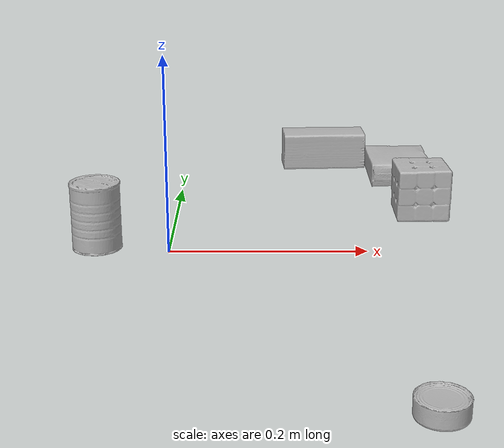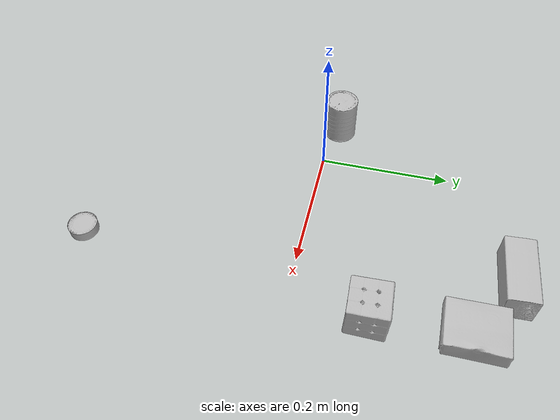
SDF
<sdf version="1.4">
  <world name="default">
    <light name="light1" type="point">
      <pose>0 0 1 0 0 0</pose>
      <diffuse>3 3 3 1</diffuse>
      <specular>3 3 3 1</specular>
    </light>
    <light name="light2" type="point">
      <pose>0 0.5 2 0 0 0</pose>
      <diffuse>1 1 1 1</diffuse>
      <specular>1 1 1 1</specular>
    </light>
    <light name="light3" type="point">
      <pose>0 0.5 2 0 0 0</pose>
      <diffuse>3 3 3 1</diffuse>
      <specular>3 3 3 1</specular>
    </light>
    <scene>
      <ambient>0.7 0.7 0.7</ambient>
    </scene>
    <model name="box1">
      <link name="link_box1">
        <collision name="default">
          <geometry>
            <mesh>
              <uri>model://rubiks_cube/collision_meshes/collision.obj</uri>
              <scale>1.0 1.0 1.0</scale>
            </mesh>
          </geometry>
          <surface>
            <friction>
              <ode>
                <mu>0.5</mu>
                <mu2>0.5</mu2>
              </ode>
            </friction>
          <contact>
        <ode>
            <max_vel>0</max_vel>
            <min_depth>0.0001</min_depth>
            <kp>1e8</kp>
        </ode>
    </contact></surface>
        </collision>
        <visual name="default">
          <geometry>
            <mesh>
              <uri>model://rubiks_cube/visual_meshes/visual.dae</uri>
              <scale>1.0 1.0 1.0</scale>
            </mesh>
          </geometry>
        </visual>
        <inertial>
          <mass>0.1675702929496765</mass>
          <pose>2.6721041649580002e-05 5.2569666877388954e-05 -7.264316082000732e-06 -0.054672410780645164 -0.09813946178663992 -0.034457105846518836</pose>
          <inertia>
            <ixx>9.259384e-05</ixx>
            <iyy>9.2162045e-05</iyy>
            <izz>9.336113e-05</izz>
            <ixy>0</ixy>
            <ixz>0</ixz>
            <iyz>0</iyz>
          </inertia>
        </inertial>
      </link>
      <pose>0.2702222764492035 0.11303331702947617 0.02867898717522621 -2.5534446775321202e-06 -8.268873278952037e-07 -3.1181051182005346</pose>
    </model>
    <model name="box2">
      <link name="link_box2">
        <collision name="default">
          <geometry>
            <mesh>
              <uri>model://wood_block/collision_meshes/collision.obj</uri>
              <scale>0.5 0.5 0.5</scale>
            </mesh>
          </geometry>
          <surface>
            <friction>
              <ode>
                <mu>0.5</mu>
                <mu2>0.5</mu2>
              </ode>
            </friction>
          <contact>
        <ode>
            <max_vel>0</max_vel>
            <min_depth>0.0001</min_depth>
            <kp>1e8</kp>
        </ode>
    </contact></surface>
        </collision>
        <visual name="default">
          <geometry>
            <mesh>
              <uri>model://wood_block/visual_meshes/visual.dae</uri>
              <scale>0.5 0.5 0.5</scale>
            </mesh>
          </geometry>
        </visual>
        <inertial>
          <mass>0.20594346523284912</mass>
          <pose>-2.9066577553749084e-06 -0.000285404734313488 0.00013204291462898254 -0.05220975528833662 -0.005192695571830849 -0.0068613788586691015</pose>
          <inertia>
            <ixx>6.8895875e-05</ixx>
            <iyy>0.0002176421</iyy>
            <izz>0.00021682802</izz>
            <ixy>0</ixy>
            <ixz>0</ixz>
            <iyz>0</iyz>
          </inertia>
        </inertial>
      </link>
      <pose>0.1740850806236267 0.30389636754989624 0.022629259154200554 -0.005208619619548967 0.005718713101061829 0.04610660471868888</pose>
    </model>
    <model name="box3">
      <link name="link_box3">
        <collision name="default">
          <geometry>
            <mesh>
              <uri>model://gelatin_box/collision_meshes/collision.obj</uri>
              <scale>1.0 1.0 1.0</scale>
            </mesh>
          </geometry>
          <surface>
            <friction>
              <ode>
                <mu>0.5</mu>
                <mu2>0.5</mu2>
              </ode>
            </friction>
          <contact>
        <ode>
            <max_vel>0</max_vel>
            <min_depth>0.0001</min_depth>
            <kp>1e8</kp>
        </ode>
    </contact></surface>
        </collision>
        <visual name="default">
          <geometry>
            <mesh>
              <uri>model://gelatin_box/visual_meshes/visual.dae</uri>
              <scale>1.0 1.0 1.0</scale>
            </mesh>
          </geometry>
        </visual>
        <inertial>
          <mass>0.27371785044670105</mass>
          <pose>0.0004319618456065655 0.00011156871914863586 -0.0003640321083366871 -0.0010503717367230932 -0.004755817294347581 0.01644056133308036</pose>
          <inertia>
            <ixx>0.00019322247</ixx>
            <iyy>0.00013801781</iyy>
            <izz>0.00029412765</izz>
            <ixy>0</ixy>
            <ixz>0</ixz>
            <iyz>0</iyz>
          </inertia>
        </inertial>
      </link>
      <pose>0.26312100887298584 0.2523568272590637 0.015168310143053532 0.005597473134997583 -0.0073045388560017445 -0.007882585182850524</pose>
    </model>
    <model name="can1">
      <link name="link_can1">
        <collision name="default">
          <geometry>
            <mesh>
              <uri>model://master_chef_can/collision_meshes/collision.obj</uri>
              <scale>0.5 0.5 0.5</scale>
            </mesh>
          </geometry>
          <surface>
            <friction>
              <ode>
                <mu>0.5</mu>
                <mu2>0.5</mu2>
              </ode>
            </friction>
          <contact>
        <ode>
            <max_vel>0</max_vel>
            <min_depth>0.0001</min_depth>
            <kp>1e8</kp>
        </ode>
    </contact></surface>
        </collision>
        <visual name="default">
          <geometry>
            <mesh>
              <uri>model://master_chef_can/visual_meshes/visual.dae</uri>
              <scale>0.5 0.5 0.5</scale>
            </mesh>
          </geometry>
        </visual>
        <inertial>
          <mass>0.18439537286758423</mass>
          <pose>-4.6619643399026245e-05 1.3926847941547749e-07 -5.080040136817843e-05 -0.0017995053130472594 0.0006479450382529565 -0.6102509153361354</pose>
          <inertia>
            <ixx>0.00010822757</ixx>
            <iyy>0.00010743104</iyy>
            <izz>5.9804017e-05</izz>
            <ixy>0</ixy>
            <ixz>0</ixz>
            <iyz>0</iyz>
          </inertia>
        </inertial>
      </link>
      <pose>-0.07372285425662994 0.014173056930303574 0.03530199080705643 -1.6689481426083587e-06 -8.669182587373568e-07 -0.013337898550988414</pose>
    </model>
    <model name="can2">
      <link name="link_can2">
        <collision name="default">
          <geometry>
            <mesh>
              <uri>model://tuna_fish_can/collision_meshes/collision.obj</uri>
              <scale>0.5 0.5 0.5</scale>
            </mesh>
          </geometry>
          <surface>
            <friction>
              <ode>
                <mu>0.5</mu>
                <mu2>0.5</mu2>
              </ode>
            </friction>
          <contact>
        <ode>
            <max_vel>0</max_vel>
            <min_depth>0.0001</min_depth>
            <kp>1e8</kp>
        </ode>
    </contact></surface>
        </collision>
        <visual name="default">
          <geometry>
            <mesh>
              <uri>model://tuna_fish_can/visual_meshes/visual.dae</uri>
              <scale>0.5 0.5 0.5</scale>
            </mesh>
          </geometry>
        </visual>
        <inertial>
          <mass>0.02825223281979561</mass>
          <pose>-2.0362142095109448e-05 -7.256046956172213e-06 -0.0005269023240543902 -0.0017944745775900258 0.00017164550693472895 0.24055441971144348</pose>
          <inertia>
            <ixx>3.819744e-06</ixx>
            <iyy>3.803824e-06</iyy>
            <izz>6.536128e-06</izz>
            <ixy>0</ixy>
            <ixz>0</ixz>
            <iyz>0</iyz>
          </inertia>
        </inertial>
      </link>
      <pose>0.21972499787807465 -0.3179243505001068 0.008520000614225864 -8.246141541007105e-09 -1.8057554692434179e-09 -1.6540221004006037</pose>
    </model>
  <physics type="ode">
      <max_contacts>50</max_contacts>
      <ode>
        <solver>
          <type>quick</type>
          <iters>75</iters>
        </solver>
        <constraints>
          <contact_max_correcting_vel>0</contact_max_correcting_vel>
          <contact_surface_layer>0</contact_surface_layer>
        </constraints>
      </ode>
    </physics></world>
</sdf>
